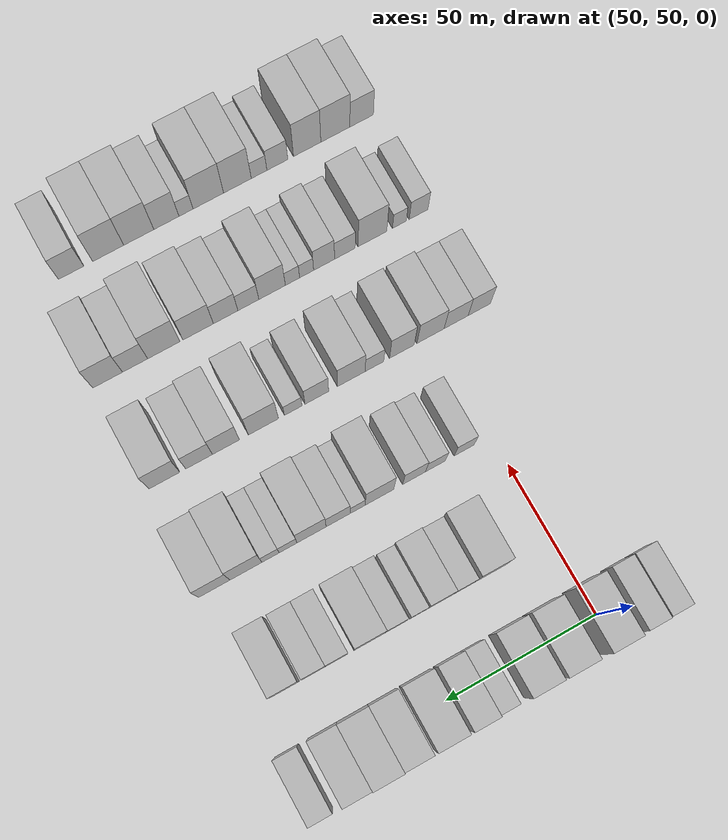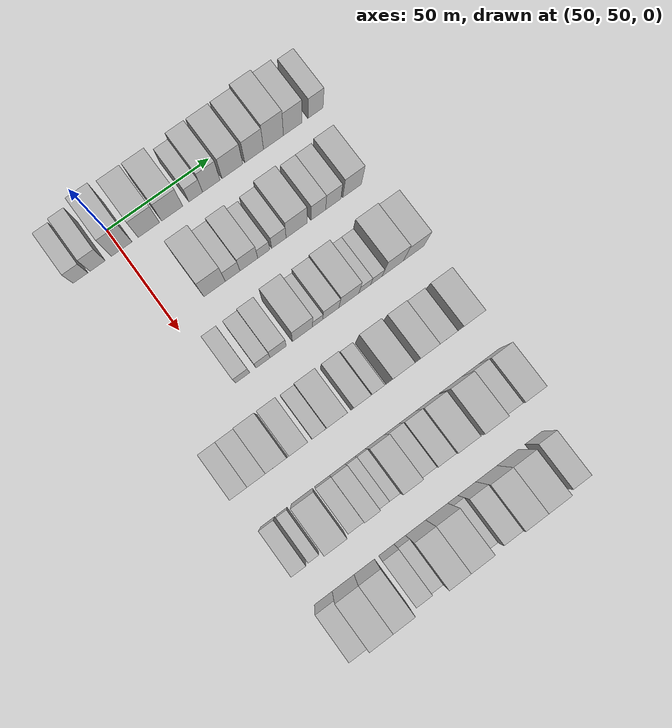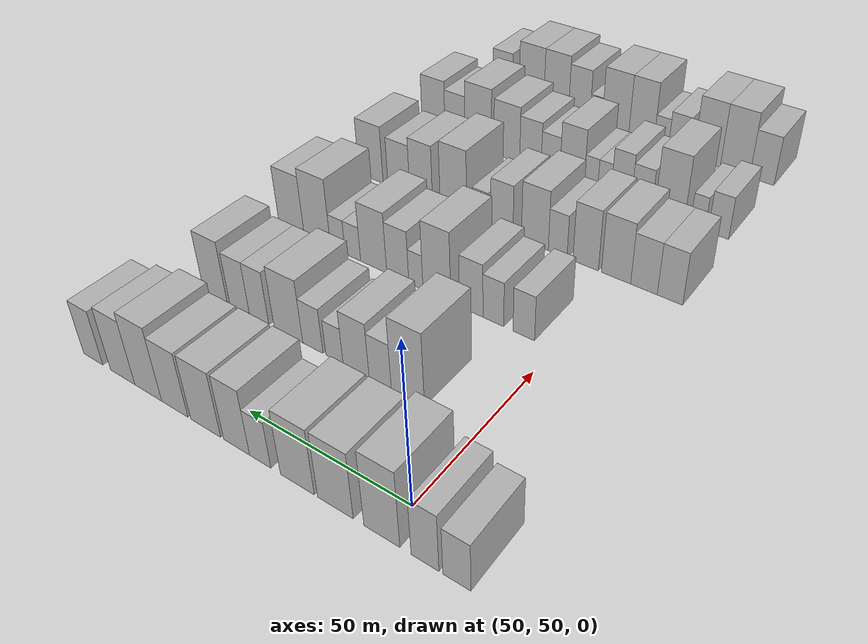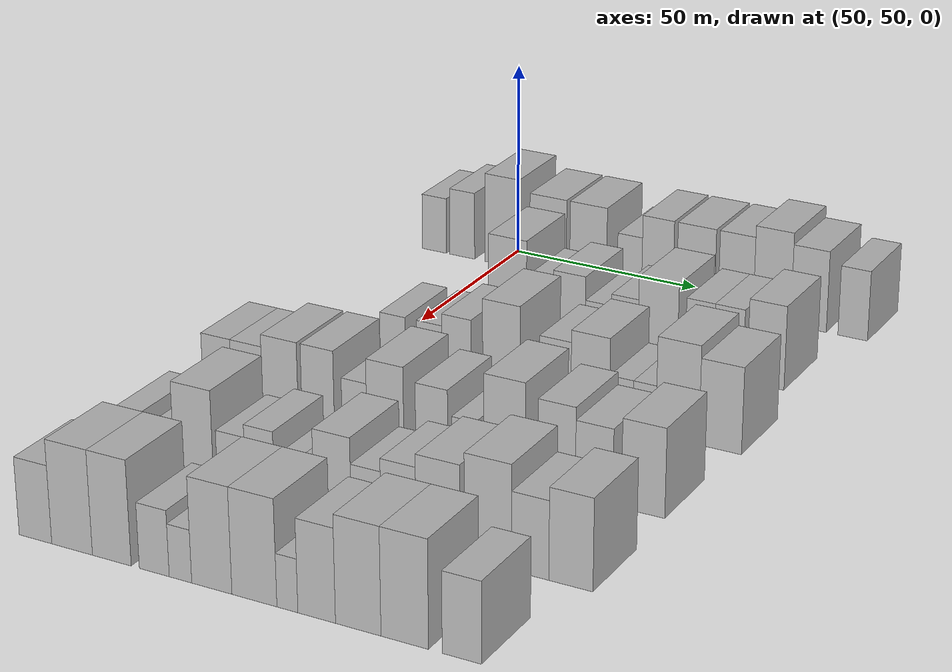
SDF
<sdf version="1.6">
 <world name="default">
  <model name="building_67">
   <static>1</static>
   <pose>50.0000 30.8138 0 0.000000 0.000000 0.000000</pose>
   <link name="link">
    <pose>0 0 7.50 0 0 0</pose>
    <collision name="collision"><geometry><box><size>20.0000 7.0881 15.0000</size></box></geometry></collision>
    <visual name="visual">
     <cast_shadows>0</cast_shadows>
     <geometry><box><size>20.0000 7.0881 15.0000</size></box></geometry>
     <material>
      <script>
       <uri>model://HANNAS_wall/materials/scripts</uri>
       <uri>model://HANNAS_wall/materials/textures</uri>
       <name>vrc/HANNAS_wall</name>
      </script>
     </material>
    </visual>
   </link>
  </model>
  <model name="building_68">
   <static>1</static>
   <pose>50.0000 38.9960 0 0.000000 0.000000 0.000000</pose>
   <link name="link">
    <pose>0 0 9.00 0 0 0</pose>
    <collision name="collision"><geometry><box><size>20.0000 7.2763 18.0000</size></box></geometry></collision>
    <visual name="visual">
     <cast_shadows>0</cast_shadows>
     <geometry><box><size>20.0000 7.2763 18.0000</size></box></geometry>
     <material>
      <script>
       <uri>model://HANNAS_wall/materials/scripts</uri>
       <uri>model://HANNAS_wall/materials/textures</uri>
       <name>vrc/HANNAS_wall</name>
      </script>
     </material>
    </visual>
   </link>
  </model>
  <model name="building_69">
   <static>1</static>
   <pose>50.0000 50.5784 0 0.000000 0.000000 0.000000</pose>
   <link name="link">
    <pose>0 0 12.00 0 0 0</pose>
    <collision name="collision"><geometry><box><size>20.0000 9.8885 24.0000</size></box></geometry></collision>
    <visual name="visual">
     <cast_shadows>0</cast_shadows>
     <geometry><box><size>20.0000 9.8885 24.0000</size></box></geometry>
     <material>
      <script>
       <uri>model://HANNAS_wall/materials/scripts</uri>
       <uri>model://HANNAS_wall/materials/textures</uri>
       <name>vrc/HANNAS_wall</name>
      </script>
     </material>
    </visual>
   </link>
  </model>
  <model name="building_70">
   <static>1</static>
   <pose>50.0000 63.6983 0 0.000000 0.000000 0.000000</pose>
   <link name="link">
    <pose>0 0 10.50 0 0 0</pose>
    <collision name="collision"><geometry><box><size>20.0000 10.3514 21.0000</size></box></geometry></collision>
    <visual name="visual">
     <cast_shadows>0</cast_shadows>
     <geometry><box><size>20.0000 10.3514 21.0000</size></box></geometry>
     <material>
      <script>
       <uri>model://HANNAS_wall/materials/scripts</uri>
       <uri>model://HANNAS_wall/materials/textures</uri>
       <name>vrc/HANNAS_wall</name>
      </script>
     </material>
    </visual>
   </link>
  </model>
  <model name="building_71">
   <static>1</static>
   <pose>50.0000 75.0216 0 0.000000 0.000000 0.000000</pose>
   <link name="link">
    <pose>0 0 10.50 0 0 0</pose>
    <collision name="collision"><geometry><box><size>20.0000 10.2951 21.0000</size></box></geometry></collision>
    <visual name="visual">
     <cast_shadows>0</cast_shadows>
     <geometry><box><size>20.0000 10.2951 21.0000</size></box></geometry>
     <material>
      <script>
       <uri>model://HANNAS_wall/materials/scripts</uri>
       <uri>model://HANNAS_wall/materials/textures</uri>
       <name>vrc/HANNAS_wall</name>
      </script>
     </material>
    </visual>
   </link>
  </model>
  <model name="building_72">
   <static>1</static>
   <pose>50.0000 86.5434 0 0.000000 0.000000 0.000000</pose>
   <link name="link">
    <pose>0 0 7.50 0 0 0</pose>
    <collision name="collision"><geometry><box><size>20.0000 6.7485 15.0000</size></box></geometry></collision>
    <visual name="visual">
     <cast_shadows>0</cast_shadows>
     <geometry><box><size>20.0000 6.7485 15.0000</size></box></geometry>
     <material>
      <script>
       <uri>model://HANNAS_wall/materials/scripts</uri>
       <uri>model://HANNAS_wall/materials/textures</uri>
       <name>vrc/HANNAS_wall</name>
      </script>
     </material>
    </visual>
   </link>
  </model>
  <model name="building_73">
   <static>1</static>
   <pose>50.0000 94.1869 0 0.000000 0.000000 0.000000</pose>
   <link name="link">
    <pose>0 0 10.50 0 0 0</pose>
    <collision name="collision"><geometry><box><size>20.0000 8.5384 21.0000</size></box></geometry></collision>
    <visual name="visual">
     <cast_shadows>0</cast_shadows>
     <geometry><box><size>20.0000 8.5384 21.0000</size></box></geometry>
     <material>
      <script>
       <uri>model://HANNAS_wall/materials/scripts</uri>
       <uri>model://HANNAS_wall/materials/textures</uri>
       <name>vrc/HANNAS_wall</name>
      </script>
     </material>
    </visual>
   </link>
  </model>
  <model name="building_74">
   <static>1</static>
   <pose>50.0000 104.5766 0 0.000000 0.000000 0.000000</pose>
   <link name="link">
    <pose>0 0 10.50 0 0 0</pose>
    <collision name="collision"><geometry><box><size>20.0000 10.2410 21.0000</size></box></geometry></collision>
    <visual name="visual">
     <cast_shadows>0</cast_shadows>
     <geometry><box><size>20.0000 10.2410 21.0000</size></box></geometry>
     <material>
      <script>
       <uri>model://HANNAS_wall/materials/scripts</uri>
       <uri>model://HANNAS_wall/materials/textures</uri>
       <name>vrc/HANNAS_wall</name>
      </script>
     </material>
    </visual>
   </link>
  </model>
  <model name="building_75">
   <static>1</static>
   <pose>50.0000 115.3670 0 0.000000 0.000000 0.000000</pose>
   <link name="link">
    <pose>0 0 10.50 0 0 0</pose>
    <collision name="collision"><geometry><box><size>20.0000 9.3397 21.0000</size></box></geometry></collision>
    <visual name="visual">
     <cast_shadows>0</cast_shadows>
     <geometry><box><size>20.0000 9.3397 21.0000</size></box></geometry>
     <material>
      <script>
       <uri>model://HANNAS_wall/materials/scripts</uri>
       <uri>model://HANNAS_wall/materials/textures</uri>
       <name>vrc/HANNAS_wall</name>
      </script>
     </material>
    </visual>
   </link>
  </model>
  <model name="building_76">
   <static>1</static>
   <pose>50.0000 124.9895 0 0.000000 0.000000 0.000000</pose>
   <link name="link">
    <pose>0 0 12.00 0 0 0</pose>
    <collision name="collision"><geometry><box><size>20.0000 9.9055 24.0000</size></box></geometry></collision>
    <visual name="visual">
     <cast_shadows>0</cast_shadows>
     <geometry><box><size>20.0000 9.9055 24.0000</size></box></geometry>
     <material>
      <script>
       <uri>model://HANNAS_wall/materials/scripts</uri>
       <uri>model://HANNAS_wall/materials/textures</uri>
       <name>vrc/HANNAS_wall</name>
      </script>
     </material>
    </visual>
   </link>
  </model>
  <model name="building_77">
   <static>1</static>
   <pose>50.0000 134.5950 0 0.000000 0.000000 0.000000</pose>
   <link name="link">
    <pose>0 0 10.50 0 0 0</pose>
    <collision name="collision"><geometry><box><size>20.0000 9.3054 21.0000</size></box></geometry></collision>
    <visual name="visual">
     <cast_shadows>0</cast_shadows>
     <geometry><box><size>20.0000 9.3054 21.0000</size></box></geometry>
     <material>
      <script>
       <uri>model://HANNAS_wall/materials/scripts</uri>
       <uri>model://HANNAS_wall/materials/textures</uri>
       <name>vrc/HANNAS_wall</name>
      </script>
     </material>
    </visual>
   </link>
  </model>
  <model name="building_78">
   <static>1</static>
   <pose>50.0000 146.0429 0 0.000000 0.000000 0.000000</pose>
   <link name="link">
    <pose>0 0 9.00 0 0 0</pose>
    <collision name="collision"><geometry><box><size>20.0000 7.5906 18.0000</size></box></geometry></collision>
    <visual name="visual">
     <cast_shadows>0</cast_shadows>
     <geometry><box><size>20.0000 7.5906 18.0000</size></box></geometry>
     <material>
      <script>
       <uri>model://HANNAS_wall/materials/scripts</uri>
       <uri>model://HANNAS_wall/materials/textures</uri>
       <name>vrc/HANNAS_wall</name>
      </script>
     </material>
    </visual>
   </link>
  </model>
  <model name="building_200">
   <static>1</static>
   <pose>85.0000 70.8505 0 0.000000 0.000000 0.000000</pose>
   <link name="link">
    <pose>0 0 12.00 0 0 0</pose>
    <collision name="collision"><geometry><box><size>20.0000 10.3451 24.0000</size></box></geometry></collision>
    <visual name="visual">
     <cast_shadows>0</cast_shadows>
     <geometry><box><size>20.0000 10.3451 24.0000</size></box></geometry>
     <material>
      <script>
       <uri>model://HANNAS_wall/materials/scripts</uri>
       <uri>model://HANNAS_wall/materials/textures</uri>
       <name>vrc/HANNAS_wall</name>
      </script>
     </material>
    </visual>
   </link>
  </model>
  <model name="building_201">
   <static>1</static>
   <pose>85.0000 79.6024 0 0.000000 0.000000 0.000000</pose>
   <link name="link">
    <pose>0 0 7.50 0 0 0</pose>
    <collision name="collision"><geometry><box><size>20.0000 7.1587 15.0000</size></box></geometry></collision>
    <visual name="visual">
     <cast_shadows>0</cast_shadows>
     <geometry><box><size>20.0000 7.1587 15.0000</size></box></geometry>
     <material>
      <script>
       <uri>model://HANNAS_wall/materials/scripts</uri>
       <uri>model://HANNAS_wall/materials/textures</uri>
       <name>vrc/HANNAS_wall</name>
      </script>
     </material>
    </visual>
   </link>
  </model>
  <model name="building_202">
   <static>1</static>
   <pose>85.0000 87.4994 0 0.000000 0.000000 0.000000</pose>
   <link name="link">
    <pose>0 0 9.00 0 0 0</pose>
    <collision name="collision"><geometry><box><size>20.0000 8.6353 18.0000</size></box></geometry></collision>
    <visual name="visual">
     <cast_shadows>0</cast_shadows>
     <geometry><box><size>20.0000 8.6353 18.0000</size></box></geometry>
     <material>
      <script>
       <uri>model://HANNAS_wall/materials/scripts</uri>
       <uri>model://HANNAS_wall/materials/textures</uri>
       <name>vrc/HANNAS_wall</name>
      </script>
     </material>
    </visual>
   </link>
  </model>
  <model name="building_203">
   <static>1</static>
   <pose>85.0000 94.7326 0 0.000000 0.000000 0.000000</pose>
   <link name="link">
    <pose>0 0 6.00 0 0 0</pose>
    <collision name="collision"><geometry><box><size>20.0000 5.8311 12.0000</size></box></geometry></collision>
    <visual name="visual">
     <cast_shadows>0</cast_shadows>
     <geometry><box><size>20.0000 5.8311 12.0000</size></box></geometry>
     <material>
      <script>
       <uri>model://HANNAS_wall/materials/scripts</uri>
       <uri>model://HANNAS_wall/materials/textures</uri>
       <name>vrc/HANNAS_wall</name>
      </script>
     </material>
    </visual>
   </link>
  </model>
  <model name="building_204">
   <static>1</static>
   <pose>85.0000 102.1776 0 0.000000 0.000000 0.000000</pose>
   <link name="link">
    <pose>0 0 7.50 0 0 0</pose>
    <collision name="collision"><geometry><box><size>20.0000 7.0588 15.0000</size></box></geometry></collision>
    <visual name="visual">
     <cast_shadows>0</cast_shadows>
     <geometry><box><size>20.0000 7.0588 15.0000</size></box></geometry>
     <material>
      <script>
       <uri>model://HANNAS_wall/materials/scripts</uri>
       <uri>model://HANNAS_wall/materials/textures</uri>
       <name>vrc/HANNAS_wall</name>
      </script>
     </material>
    </visual>
   </link>
  </model>
  <model name="building_205">
   <static>1</static>
   <pose>85.0000 110.8464 0 0.000000 0.000000 0.000000</pose>
   <link name="link">
    <pose>0 0 10.50 0 0 0</pose>
    <collision name="collision"><geometry><box><size>20.0000 10.2790 21.0000</size></box></geometry></collision>
    <visual name="visual">
     <cast_shadows>0</cast_shadows>
     <geometry><box><size>20.0000 10.2790 21.0000</size></box></geometry>
     <material>
      <script>
       <uri>model://HANNAS_wall/materials/scripts</uri>
       <uri>model://HANNAS_wall/materials/textures</uri>
       <name>vrc/HANNAS_wall</name>
      </script>
     </material>
    </visual>
   </link>
  </model>
  <model name="building_206">
   <static>1</static>
   <pose>85.0000 121.5926 0 0.000000 0.000000 0.000000</pose>
   <link name="link">
    <pose>0 0 9.00 0 0 0</pose>
    <collision name="collision"><geometry><box><size>20.0000 7.2134 18.0000</size></box></geometry></collision>
    <visual name="visual">
     <cast_shadows>0</cast_shadows>
     <geometry><box><size>20.0000 7.2134 18.0000</size></box></geometry>
     <material>
      <script>
       <uri>model://HANNAS_wall/materials/scripts</uri>
       <uri>model://HANNAS_wall/materials/textures</uri>
       <name>vrc/HANNAS_wall</name>
      </script>
     </material>
    </visual>
   </link>
  </model>
  <model name="building_207">
   <static>1</static>
   <pose>85.0000 128.9765 0 0.000000 0.000000 0.000000</pose>
   <link name="link">
    <pose>0 0 9.00 0 0 0</pose>
    <collision name="collision"><geometry><box><size>20.0000 7.5543 18.0000</size></box></geometry></collision>
    <visual name="visual">
     <cast_shadows>0</cast_shadows>
     <geometry><box><size>20.0000 7.5543 18.0000</size></box></geometry>
     <material>
      <script>
       <uri>model://HANNAS_wall/materials/scripts</uri>
       <uri>model://HANNAS_wall/materials/textures</uri>
       <name>vrc/HANNAS_wall</name>
      </script>
     </material>
    </visual>
   </link>
  </model>
  <model name="building_208">
   <static>1</static>
   <pose>85.0000 138.3964 0 0.000000 0.000000 0.000000</pose>
   <link name="link">
    <pose>0 0 10.50 0 0 0</pose>
    <collision name="collision"><geometry><box><size>20.0000 9.2856 21.0000</size></box></geometry></collision>
    <visual name="visual">
     <cast_shadows>0</cast_shadows>
     <geometry><box><size>20.0000 9.2856 21.0000</size></box></geometry>
     <material>
      <script>
       <uri>model://HANNAS_wall/materials/scripts</uri>
       <uri>model://HANNAS_wall/materials/textures</uri>
       <name>vrc/HANNAS_wall</name>
      </script>
     </material>
    </visual>
   </link>
  </model>
  <model name="building_321">
   <static>1</static>
   <pose>120.0000 59.3525 0 0.000000 0.000000 0.000000</pose>
   <link name="link">
    <pose>0 0 7.50 0 0 0</pose>
    <collision name="collision"><geometry><box><size>20.0000 6.7485 15.0000</size></box></geometry></collision>
    <visual name="visual">
     <cast_shadows>0</cast_shadows>
     <geometry><box><size>20.0000 6.7485 15.0000</size></box></geometry>
     <material>
      <script>
       <uri>model://HANNAS_wall/materials/scripts</uri>
       <uri>model://HANNAS_wall/materials/textures</uri>
       <name>vrc/HANNAS_wall</name>
      </script>
     </material>
    </visual>
   </link>
  </model>
  <model name="building_322">
   <static>1</static>
   <pose>120.0000 69.0872 0 0.000000 0.000000 0.000000</pose>
   <link name="link">
    <pose>0 0 7.50 0 0 0</pose>
    <collision name="collision"><geometry><box><size>20.0000 6.7209 15.0000</size></box></geometry></collision>
    <visual name="visual">
     <cast_shadows>0</cast_shadows>
     <geometry><box><size>20.0000 6.7209 15.0000</size></box></geometry>
     <material>
      <script>
       <uri>model://HANNAS_wall/materials/scripts</uri>
       <uri>model://HANNAS_wall/materials/textures</uri>
       <name>vrc/HANNAS_wall</name>
      </script>
     </material>
    </visual>
   </link>
  </model>
  <model name="building_323">
   <static>1</static>
   <pose>120.0000 76.3138 0 0.000000 0.000000 0.000000</pose>
   <link name="link">
    <pose>0 0 9.00 0 0 0</pose>
    <collision name="collision"><geometry><box><size>20.0000 7.7325 18.0000</size></box></geometry></collision>
    <visual name="visual">
     <cast_shadows>0</cast_shadows>
     <geometry><box><size>20.0000 7.7325 18.0000</size></box></geometry>
     <material>
      <script>
       <uri>model://HANNAS_wall/materials/scripts</uri>
       <uri>model://HANNAS_wall/materials/textures</uri>
       <name>vrc/HANNAS_wall</name>
      </script>
     </material>
    </visual>
   </link>
  </model>
  <model name="building_324">
   <static>1</static>
   <pose>120.0000 87.9916 0 0.000000 0.000000 0.000000</pose>
   <link name="link">
    <pose>0 0 12.00 0 0 0</pose>
    <collision name="collision"><geometry><box><size>20.0000 9.6231 24.0000</size></box></geometry></collision>
    <visual name="visual">
     <cast_shadows>0</cast_shadows>
     <geometry><box><size>20.0000 9.6231 24.0000</size></box></geometry>
     <material>
      <script>
       <uri>model://HANNAS_wall/materials/scripts</uri>
       <uri>model://HANNAS_wall/materials/textures</uri>
       <name>vrc/HANNAS_wall</name>
      </script>
     </material>
    </visual>
   </link>
  </model>
  <model name="building_325">
   <static>1</static>
   <pose>120.0000 95.3047 0 0.000000 0.000000 0.000000</pose>
   <link name="link">
    <pose>0 0 6.00 0 0 0</pose>
    <collision name="collision"><geometry><box><size>20.0000 5.0031 12.0000</size></box></geometry></collision>
    <visual name="visual">
     <cast_shadows>0</cast_shadows>
     <geometry><box><size>20.0000 5.0031 12.0000</size></box></geometry>
     <material>
      <script>
       <uri>model://HANNAS_wall/materials/scripts</uri>
       <uri>model://HANNAS_wall/materials/textures</uri>
       <name>vrc/HANNAS_wall</name>
      </script>
     </material>
    </visual>
   </link>
  </model>
  <model name="building_326">
   <static>1</static>
   <pose>120.0000 101.7952 0 0.000000 0.000000 0.000000</pose>
   <link name="link">
    <pose>0 0 9.00 0 0 0</pose>
    <collision name="collision"><geometry><box><size>20.0000 7.9778 18.0000</size></box></geometry></collision>
    <visual name="visual">
     <cast_shadows>0</cast_shadows>
     <geometry><box><size>20.0000 7.9778 18.0000</size></box></geometry>
     <material>
      <script>
       <uri>model://HANNAS_wall/materials/scripts</uri>
       <uri>model://HANNAS_wall/materials/textures</uri>
       <name>vrc/HANNAS_wall</name>
      </script>
     </material>
    </visual>
   </link>
  </model>
  <model name="building_327">
   <static>1</static>
   <pose>120.0000 110.6309 0 0.000000 0.000000 0.000000</pose>
   <link name="link">
    <pose>0 0 10.50 0 0 0</pose>
    <collision name="collision"><geometry><box><size>20.0000 9.6937 21.0000</size></box></geometry></collision>
    <visual name="visual">
     <cast_shadows>0</cast_shadows>
     <geometry><box><size>20.0000 9.6937 21.0000</size></box></geometry>
     <material>
      <script>
       <uri>model://HANNAS_wall/materials/scripts</uri>
       <uri>model://HANNAS_wall/materials/textures</uri>
       <name>vrc/HANNAS_wall</name>
      </script>
     </material>
    </visual>
   </link>
  </model>
  <model name="building_328">
   <static>1</static>
   <pose>120.0000 118.4212 0 0.000000 0.000000 0.000000</pose>
   <link name="link">
    <pose>0 0 6.00 0 0 0</pose>
    <collision name="collision"><geometry><box><size>20.0000 5.8869 12.0000</size></box></geometry></collision>
    <visual name="visual">
     <cast_shadows>0</cast_shadows>
     <geometry><box><size>20.0000 5.8869 12.0000</size></box></geometry>
     <material>
      <script>
       <uri>model://HANNAS_wall/materials/scripts</uri>
       <uri>model://HANNAS_wall/materials/textures</uri>
       <name>vrc/HANNAS_wall</name>
      </script>
     </material>
    </visual>
   </link>
  </model>
  <model name="building_329">
   <static>1</static>
   <pose>120.0000 124.1865 0 0.000000 0.000000 0.000000</pose>
   <link name="link">
    <pose>0 0 6.00 0 0 0</pose>
    <collision name="collision"><geometry><box><size>20.0000 5.6437 12.0000</size></box></geometry></collision>
    <visual name="visual">
     <cast_shadows>0</cast_shadows>
     <geometry><box><size>20.0000 5.6437 12.0000</size></box></geometry>
     <material>
      <script>
       <uri>model://HANNAS_wall/materials/scripts</uri>
       <uri>model://HANNAS_wall/materials/textures</uri>
       <name>vrc/HANNAS_wall</name>
      </script>
     </material>
    </visual>
   </link>
  </model>
  <model name="building_330">
   <static>1</static>
   <pose>120.0000 132.2730 0 0.000000 0.000000 0.000000</pose>
   <link name="link">
    <pose>0 0 12.00 0 0 0</pose>
    <collision name="collision"><geometry><box><size>20.0000 10.5293 24.0000</size></box></geometry></collision>
    <visual name="visual">
     <cast_shadows>0</cast_shadows>
     <geometry><box><size>20.0000 10.5293 24.0000</size></box></geometry>
     <material>
      <script>
       <uri>model://HANNAS_wall/materials/scripts</uri>
       <uri>model://HANNAS_wall/materials/textures</uri>
       <name>vrc/HANNAS_wall</name>
      </script>
     </material>
    </visual>
   </link>
  </model>
  <model name="building_331">
   <static>1</static>
   <pose>120.0000 142.6716 0 0.000000 0.000000 0.000000</pose>
   <link name="link">
    <pose>0 0 10.50 0 0 0</pose>
    <collision name="collision"><geometry><box><size>20.0000 10.2680 21.0000</size></box></geometry></collision>
    <visual name="visual">
     <cast_shadows>0</cast_shadows>
     <geometry><box><size>20.0000 10.2680 21.0000</size></box></geometry>
     <material>
      <script>
       <uri>model://HANNAS_wall/materials/scripts</uri>
       <uri>model://HANNAS_wall/materials/textures</uri>
       <name>vrc/HANNAS_wall</name>
      </script>
     </material>
    </visual>
   </link>
  </model>
  <model name="building_449">
   <static>1</static>
   <pose>155.0000 33.8526 0 0.000000 0.000000 0.000000</pose>
   <link name="link">
    <pose>0 0 9.00 0 0 0</pose>
    <collision name="collision"><geometry><box><size>20.0000 7.7502 18.0000</size></box></geometry></collision>
    <visual name="visual">
     <cast_shadows>0</cast_shadows>
     <geometry><box><size>20.0000 7.7502 18.0000</size></box></geometry>
     <material>
      <script>
       <uri>model://HANNAS_wall/materials/scripts</uri>
       <uri>model://HANNAS_wall/materials/textures</uri>
       <name>vrc/HANNAS_wall</name>
      </script>
     </material>
    </visual>
   </link>
  </model>
  <model name="building_450">
   <static>1</static>
   <pose>155.0000 41.8777 0 0.000000 0.000000 0.000000</pose>
   <link name="link">
    <pose>0 0 9.00 0 0 0</pose>
    <collision name="collision"><geometry><box><size>20.0000 8.3001 18.0000</size></box></geometry></collision>
    <visual name="visual">
     <cast_shadows>0</cast_shadows>
     <geometry><box><size>20.0000 8.3001 18.0000</size></box></geometry>
     <material>
      <script>
       <uri>model://HANNAS_wall/materials/scripts</uri>
       <uri>model://HANNAS_wall/materials/textures</uri>
       <name>vrc/HANNAS_wall</name>
      </script>
     </material>
    </visual>
   </link>
  </model>
  <model name="building_451">
   <static>1</static>
   <pose>155.0000 50.7173 0 0.000000 0.000000 0.000000</pose>
   <link name="link">
    <pose>0 0 10.50 0 0 0</pose>
    <collision name="collision"><geometry><box><size>20.0000 9.3790 21.0000</size></box></geometry></collision>
    <visual name="visual">
     <cast_shadows>0</cast_shadows>
     <geometry><box><size>20.0000 9.3790 21.0000</size></box></geometry>
     <material>
      <script>
       <uri>model://HANNAS_wall/materials/scripts</uri>
       <uri>model://HANNAS_wall/materials/textures</uri>
       <name>vrc/HANNAS_wall</name>
      </script>
     </material>
    </visual>
   </link>
  </model>
  <model name="building_452">
   <static>1</static>
   <pose>155.0000 60.6191 0 0.000000 0.000000 0.000000</pose>
   <link name="link">
    <pose>0 0 10.50 0 0 0</pose>
    <collision name="collision"><geometry><box><size>20.0000 8.4245 21.0000</size></box></geometry></collision>
    <visual name="visual">
     <cast_shadows>0</cast_shadows>
     <geometry><box><size>20.0000 8.4245 21.0000</size></box></geometry>
     <material>
      <script>
       <uri>model://HANNAS_wall/materials/scripts</uri>
       <uri>model://HANNAS_wall/materials/textures</uri>
       <name>vrc/HANNAS_wall</name>
      </script>
     </material>
    </visual>
   </link>
  </model>
  <model name="building_453">
   <static>1</static>
   <pose>155.0000 70.0193 0 0.000000 0.000000 0.000000</pose>
   <link name="link">
    <pose>0 0 7.50 0 0 0</pose>
    <collision name="collision"><geometry><box><size>20.0000 6.3759 15.0000</size></box></geometry></collision>
    <visual name="visual">
     <cast_shadows>0</cast_shadows>
     <geometry><box><size>20.0000 6.3759 15.0000</size></box></geometry>
     <material>
      <script>
       <uri>model://HANNAS_wall/materials/scripts</uri>
       <uri>model://HANNAS_wall/materials/textures</uri>
       <name>vrc/HANNAS_wall</name>
      </script>
     </material>
    </visual>
   </link>
  </model>
  <model name="building_454">
   <static>1</static>
   <pose>155.0000 77.9081 0 0.000000 0.000000 0.000000</pose>
   <link name="link">
    <pose>0 0 10.50 0 0 0</pose>
    <collision name="collision"><geometry><box><size>20.0000 9.4017 21.0000</size></box></geometry></collision>
    <visual name="visual">
     <cast_shadows>0</cast_shadows>
     <geometry><box><size>20.0000 9.4017 21.0000</size></box></geometry>
     <material>
      <script>
       <uri>model://HANNAS_wall/materials/scripts</uri>
       <uri>model://HANNAS_wall/materials/textures</uri>
       <name>vrc/HANNAS_wall</name>
      </script>
     </material>
    </visual>
   </link>
  </model>
  <model name="building_455">
   <static>1</static>
   <pose>155.0000 89.6162 0 0.000000 0.000000 0.000000</pose>
   <link name="link">
    <pose>0 0 9.00 0 0 0</pose>
    <collision name="collision"><geometry><box><size>20.0000 8.0144 18.0000</size></box></geometry></collision>
    <visual name="visual">
     <cast_shadows>0</cast_shadows>
     <geometry><box><size>20.0000 8.0144 18.0000</size></box></geometry>
     <material>
      <script>
       <uri>model://HANNAS_wall/materials/scripts</uri>
       <uri>model://HANNAS_wall/materials/textures</uri>
       <name>vrc/HANNAS_wall</name>
      </script>
     </material>
    </visual>
   </link>
  </model>
  <model name="building_456">
   <static>1</static>
   <pose>155.0000 97.5871 0 0.000000 0.000000 0.000000</pose>
   <link name="link">
    <pose>0 0 6.00 0 0 0</pose>
    <collision name="collision"><geometry><box><size>20.0000 5.9275 12.0000</size></box></geometry></collision>
    <visual name="visual">
     <cast_shadows>0</cast_shadows>
     <geometry><box><size>20.0000 5.9275 12.0000</size></box></geometry>
     <material>
      <script>
       <uri>model://HANNAS_wall/materials/scripts</uri>
       <uri>model://HANNAS_wall/materials/textures</uri>
       <name>vrc/HANNAS_wall</name>
      </script>
     </material>
    </visual>
   </link>
  </model>
  <model name="building_457">
   <static>1</static>
   <pose>155.0000 107.6178 0 0.000000 0.000000 0.000000</pose>
   <link name="link">
    <pose>0 0 12.00 0 0 0</pose>
    <collision name="collision"><geometry><box><size>20.0000 10.1339 24.0000</size></box></geometry></collision>
    <visual name="visual">
     <cast_shadows>0</cast_shadows>
     <geometry><box><size>20.0000 10.1339 24.0000</size></box></geometry>
     <material>
      <script>
       <uri>model://HANNAS_wall/materials/scripts</uri>
       <uri>model://HANNAS_wall/materials/textures</uri>
       <name>vrc/HANNAS_wall</name>
      </script>
     </material>
    </visual>
   </link>
  </model>
  <model name="building_458">
   <static>1</static>
   <pose>155.0000 120.1816 0 0.000000 0.000000 0.000000</pose>
   <link name="link">
    <pose>0 0 10.50 0 0 0</pose>
    <collision name="collision"><geometry><box><size>20.0000 8.9937 21.0000</size></box></geometry></collision>
    <visual name="visual">
     <cast_shadows>0</cast_shadows>
     <geometry><box><size>20.0000 8.9937 21.0000</size></box></geometry>
     <material>
      <script>
       <uri>model://HANNAS_wall/materials/scripts</uri>
       <uri>model://HANNAS_wall/materials/textures</uri>
       <name>vrc/HANNAS_wall</name>
      </script>
     </material>
    </visual>
   </link>
  </model>
  <model name="building_459">
   <static>1</static>
   <pose>155.0000 129.1196 0 0.000000 0.000000 0.000000</pose>
   <link name="link">
    <pose>0 0 9.00 0 0 0</pose>
    <collision name="collision"><geometry><box><size>20.0000 8.8823 18.0000</size></box></geometry></collision>
    <visual name="visual">
     <cast_shadows>0</cast_shadows>
     <geometry><box><size>20.0000 8.8823 18.0000</size></box></geometry>
     <material>
      <script>
       <uri>model://HANNAS_wall/materials/scripts</uri>
       <uri>model://HANNAS_wall/materials/textures</uri>
       <name>vrc/HANNAS_wall</name>
      </script>
     </material>
    </visual>
   </link>
  </model>
  <model name="building_460">
   <static>1</static>
   <pose>155.0000 140.6371 0 0.000000 0.000000 0.000000</pose>
   <link name="link">
    <pose>0 0 10.50 0 0 0</pose>
    <collision name="collision"><geometry><box><size>20.0000 10.1528 21.0000</size></box></geometry></collision>
    <visual name="visual">
     <cast_shadows>0</cast_shadows>
     <geometry><box><size>20.0000 10.1528 21.0000</size></box></geometry>
     <material>
      <script>
       <uri>model://HANNAS_wall/materials/scripts</uri>
       <uri>model://HANNAS_wall/materials/textures</uri>
       <name>vrc/HANNAS_wall</name>
      </script>
     </material>
    </visual>
   </link>
  </model>
  <model name="building_582">
   <static>1</static>
   <pose>190.0000 34.9261 0 0.000000 0.000000 0.000000</pose>
   <link name="link">
    <pose>0 0 7.50 0 0 0</pose>
    <collision name="collision"><geometry><box><size>20.0000 6.5883 15.0000</size></box></geometry></collision>
    <visual name="visual">
     <cast_shadows>0</cast_shadows>
     <geometry><box><size>20.0000 6.5883 15.0000</size></box></geometry>
     <material>
      <script>
       <uri>model://HANNAS_wall/materials/scripts</uri>
       <uri>model://HANNAS_wall/materials/textures</uri>
       <name>vrc/HANNAS_wall</name>
      </script>
     </material>
    </visual>
   </link>
  </model>
  <model name="building_583">
   <static>1</static>
   <pose>190.0000 41.6383 0 0.000000 0.000000 0.000000</pose>
   <link name="link">
    <pose>0 0 6.00 0 0 0</pose>
    <collision name="collision"><geometry><box><size>20.0000 4.8362 12.0000</size></box></geometry></collision>
    <visual name="visual">
     <cast_shadows>0</cast_shadows>
     <geometry><box><size>20.0000 4.8362 12.0000</size></box></geometry>
     <material>
      <script>
       <uri>model://HANNAS_wall/materials/scripts</uri>
       <uri>model://HANNAS_wall/materials/textures</uri>
       <name>vrc/HANNAS_wall</name>
      </script>
     </material>
    </visual>
   </link>
  </model>
  <model name="building_584">
   <static>1</static>
   <pose>190.0000 51.0670 0 0.000000 0.000000 0.000000</pose>
   <link name="link">
    <pose>0 0 12.00 0 0 0</pose>
    <collision name="collision"><geometry><box><size>20.0000 10.0211 24.0000</size></box></geometry></collision>
    <visual name="visual">
     <cast_shadows>0</cast_shadows>
     <geometry><box><size>20.0000 10.0211 24.0000</size></box></geometry>
     <material>
      <script>
       <uri>model://HANNAS_wall/materials/scripts</uri>
       <uri>model://HANNAS_wall/materials/textures</uri>
       <name>vrc/HANNAS_wall</name>
      </script>
     </material>
    </visual>
   </link>
  </model>
  <model name="building_585">
   <static>1</static>
   <pose>190.0000 60.6470 0 0.000000 0.000000 0.000000</pose>
   <link name="link">
    <pose>0 0 7.50 0 0 0</pose>
    <collision name="collision"><geometry><box><size>20.0000 7.1390 15.0000</size></box></geometry></collision>
    <visual name="visual">
     <cast_shadows>0</cast_shadows>
     <geometry><box><size>20.0000 7.1390 15.0000</size></box></geometry>
     <material>
      <script>
       <uri>model://HANNAS_wall/materials/scripts</uri>
       <uri>model://HANNAS_wall/materials/textures</uri>
       <name>vrc/HANNAS_wall</name>
      </script>
     </material>
    </visual>
   </link>
  </model>
  <model name="building_586">
   <static>1</static>
   <pose>190.0000 67.8376 0 0.000000 0.000000 0.000000</pose>
   <link name="link">
    <pose>0 0 9.00 0 0 0</pose>
    <collision name="collision"><geometry><box><size>20.0000 7.2422 18.0000</size></box></geometry></collision>
    <visual name="visual">
     <cast_shadows>0</cast_shadows>
     <geometry><box><size>20.0000 7.2422 18.0000</size></box></geometry>
     <material>
      <script>
       <uri>model://HANNAS_wall/materials/scripts</uri>
       <uri>model://HANNAS_wall/materials/textures</uri>
       <name>vrc/HANNAS_wall</name>
      </script>
     </material>
    </visual>
   </link>
  </model>
  <model name="building_587">
   <static>1</static>
   <pose>190.0000 73.8658 0 0.000000 0.000000 0.000000</pose>
   <link name="link">
    <pose>0 0 6.00 0 0 0</pose>
    <collision name="collision"><geometry><box><size>20.0000 4.8141 12.0000</size></box></geometry></collision>
    <visual name="visual">
     <cast_shadows>0</cast_shadows>
     <geometry><box><size>20.0000 4.8141 12.0000</size></box></geometry>
     <material>
      <script>
       <uri>model://HANNAS_wall/materials/scripts</uri>
       <uri>model://HANNAS_wall/materials/textures</uri>
       <name>vrc/HANNAS_wall</name>
      </script>
     </material>
    </visual>
   </link>
  </model>
  <model name="building_588">
   <static>1</static>
   <pose>190.0000 78.7311 0 0.000000 0.000000 0.000000</pose>
   <link name="link">
    <pose>0 0 6.00 0 0 0</pose>
    <collision name="collision"><geometry><box><size>20.0000 4.9166 12.0000</size></box></geometry></collision>
    <visual name="visual">
     <cast_shadows>0</cast_shadows>
     <geometry><box><size>20.0000 4.9166 12.0000</size></box></geometry>
     <material>
      <script>
       <uri>model://HANNAS_wall/materials/scripts</uri>
       <uri>model://HANNAS_wall/materials/textures</uri>
       <name>vrc/HANNAS_wall</name>
      </script>
     </material>
    </visual>
   </link>
  </model>
  <model name="building_589">
   <static>1</static>
   <pose>190.0000 85.7325 0 0.000000 0.000000 0.000000</pose>
   <link name="link">
    <pose>0 0 10.50 0 0 0</pose>
    <collision name="collision"><geometry><box><size>20.0000 9.0862 21.0000</size></box></geometry></collision>
    <visual name="visual">
     <cast_shadows>0</cast_shadows>
     <geometry><box><size>20.0000 9.0862 21.0000</size></box></geometry>
     <material>
      <script>
       <uri>model://HANNAS_wall/materials/scripts</uri>
       <uri>model://HANNAS_wall/materials/textures</uri>
       <name>vrc/HANNAS_wall</name>
      </script>
     </material>
    </visual>
   </link>
  </model>
  <model name="building_590">
   <static>1</static>
   <pose>190.0000 93.8554 0 0.000000 0.000000 0.000000</pose>
   <link name="link">
    <pose>0 0 7.50 0 0 0</pose>
    <collision name="collision"><geometry><box><size>20.0000 7.1595 15.0000</size></box></geometry></collision>
    <visual name="visual">
     <cast_shadows>0</cast_shadows>
     <geometry><box><size>20.0000 7.1595 15.0000</size></box></geometry>
     <material>
      <script>
       <uri>model://HANNAS_wall/materials/scripts</uri>
       <uri>model://HANNAS_wall/materials/textures</uri>
       <name>vrc/HANNAS_wall</name>
      </script>
     </material>
    </visual>
   </link>
  </model>
  <model name="building_591">
   <static>1</static>
   <pose>190.0000 101.6077 0 0.000000 0.000000 0.000000</pose>
   <link name="link">
    <pose>0 0 9.00 0 0 0</pose>
    <collision name="collision"><geometry><box><size>20.0000 8.3451 18.0000</size></box></geometry></collision>
    <visual name="visual">
     <cast_shadows>0</cast_shadows>
     <geometry><box><size>20.0000 8.3451 18.0000</size></box></geometry>
     <material>
      <script>
       <uri>model://HANNAS_wall/materials/scripts</uri>
       <uri>model://HANNAS_wall/materials/textures</uri>
       <name>vrc/HANNAS_wall</name>
      </script>
     </material>
    </visual>
   </link>
  </model>
  <model name="building_592">
   <static>1</static>
   <pose>190.0000 110.9553 0 0.000000 0.000000 0.000000</pose>
   <link name="link">
    <pose>0 0 10.50 0 0 0</pose>
    <collision name="collision"><geometry><box><size>20.0000 10.3500 21.0000</size></box></geometry></collision>
    <visual name="visual">
     <cast_shadows>0</cast_shadows>
     <geometry><box><size>20.0000 10.3500 21.0000</size></box></geometry>
     <material>
      <script>
       <uri>model://HANNAS_wall/materials/scripts</uri>
       <uri>model://HANNAS_wall/materials/textures</uri>
       <name>vrc/HANNAS_wall</name>
      </script>
     </material>
    </visual>
   </link>
  </model>
  <model name="building_593">
   <static>1</static>
   <pose>190.0000 122.5695 0 0.000000 0.000000 0.000000</pose>
   <link name="link">
    <pose>0 0 12.00 0 0 0</pose>
    <collision name="collision"><geometry><box><size>20.0000 10.8785 24.0000</size></box></geometry></collision>
    <visual name="visual">
     <cast_shadows>0</cast_shadows>
     <geometry><box><size>20.0000 10.8785 24.0000</size></box></geometry>
     <material>
      <script>
       <uri>model://HANNAS_wall/materials/scripts</uri>
       <uri>model://HANNAS_wall/materials/textures</uri>
       <name>vrc/HANNAS_wall</name>
      </script>
     </material>
    </visual>
   </link>
  </model>
  <model name="building_594">
   <static>1</static>
   <pose>190.0000 132.2441 0 0.000000 0.000000 0.000000</pose>
   <link name="link">
    <pose>0 0 9.00 0 0 0</pose>
    <collision name="collision"><geometry><box><size>20.0000 8.4707 18.0000</size></box></geometry></collision>
    <visual name="visual">
     <cast_shadows>0</cast_shadows>
     <geometry><box><size>20.0000 8.4707 18.0000</size></box></geometry>
     <material>
      <script>
       <uri>model://HANNAS_wall/materials/scripts</uri>
       <uri>model://HANNAS_wall/materials/textures</uri>
       <name>vrc/HANNAS_wall</name>
      </script>
     </material>
    </visual>
   </link>
  </model>
  <model name="building_595">
   <static>1</static>
   <pose>190.0000 141.4341 0 0.000000 0.000000 0.000000</pose>
   <link name="link">
    <pose>0 0 10.50 0 0 0</pose>
    <collision name="collision"><geometry><box><size>20.0000 9.9094 21.0000</size></box></geometry></collision>
    <visual name="visual">
     <cast_shadows>0</cast_shadows>
     <geometry><box><size>20.0000 9.9094 21.0000</size></box></geometry>
     <material>
      <script>
       <uri>model://HANNAS_wall/materials/scripts</uri>
       <uri>model://HANNAS_wall/materials/textures</uri>
       <name>vrc/HANNAS_wall</name>
      </script>
     </material>
    </visual>
   </link>
  </model>
  <model name="building_708">
   <static>1</static>
   <pose>225.0000 35.2601 0 0.000000 0.000000 0.000000</pose>
   <link name="link">
    <pose>0 0 9.00 0 0 0</pose>
    <collision name="collision"><geometry><box><size>20.0000 8.3197 18.0000</size></box></geometry></collision>
    <visual name="visual">
     <cast_shadows>0</cast_shadows>
     <geometry><box><size>20.0000 8.3197 18.0000</size></box></geometry>
     <material>
      <script>
       <uri>model://HANNAS_wall/materials/scripts</uri>
       <uri>model://HANNAS_wall/materials/textures</uri>
       <name>vrc/HANNAS_wall</name>
      </script>
     </material>
    </visual>
   </link>
  </model>
  <model name="building_709">
   <static>1</static>
   <pose>225.0000 44.5431 0 0.000000 0.000000 0.000000</pose>
   <link name="link">
    <pose>0 0 12.00 0 0 0</pose>
    <collision name="collision"><geometry><box><size>20.0000 10.2462 24.0000</size></box></geometry></collision>
    <visual name="visual">
     <cast_shadows>0</cast_shadows>
     <geometry><box><size>20.0000 10.2462 24.0000</size></box></geometry>
     <material>
      <script>
       <uri>model://HANNAS_wall/materials/scripts</uri>
       <uri>model://HANNAS_wall/materials/textures</uri>
       <name>vrc/HANNAS_wall</name>
      </script>
     </material>
    </visual>
   </link>
  </model>
  <model name="building_710">
   <static>1</static>
   <pose>225.0000 54.4747 0 0.000000 0.000000 0.000000</pose>
   <link name="link">
    <pose>0 0 12.00 0 0 0</pose>
    <collision name="collision"><geometry><box><size>20.0000 9.6170 24.0000</size></box></geometry></collision>
    <visual name="visual">
     <cast_shadows>0</cast_shadows>
     <geometry><box><size>20.0000 9.6170 24.0000</size></box></geometry>
     <material>
      <script>
       <uri>model://HANNAS_wall/materials/scripts</uri>
       <uri>model://HANNAS_wall/materials/textures</uri>
       <name>vrc/HANNAS_wall</name>
      </script>
     </material>
    </visual>
   </link>
  </model>
  <model name="building_711">
   <static>1</static>
   <pose>225.0000 64.9317 0 0.000000 0.000000 0.000000</pose>
   <link name="link">
    <pose>0 0 7.50 0 0 0</pose>
    <collision name="collision"><geometry><box><size>20.0000 7.2971 15.0000</size></box></geometry></collision>
    <visual name="visual">
     <cast_shadows>0</cast_shadows>
     <geometry><box><size>20.0000 7.2971 15.0000</size></box></geometry>
     <material>
      <script>
       <uri>model://HANNAS_wall/materials/scripts</uri>
       <uri>model://HANNAS_wall/materials/textures</uri>
       <name>vrc/HANNAS_wall</name>
      </script>
     </material>
    </visual>
   </link>
  </model>
  <model name="building_712">
   <static>1</static>
   <pose>225.0000 71.3012 0 0.000000 0.000000 0.000000</pose>
   <link name="link">
    <pose>0 0 6.00 0 0 0</pose>
    <collision name="collision"><geometry><box><size>20.0000 5.4419 12.0000</size></box></geometry></collision>
    <visual name="visual">
     <cast_shadows>0</cast_shadows>
     <geometry><box><size>20.0000 5.4419 12.0000</size></box></geometry>
     <material>
      <script>
       <uri>model://HANNAS_wall/materials/scripts</uri>
       <uri>model://HANNAS_wall/materials/textures</uri>
       <name>vrc/HANNAS_wall</name>
      </script>
     </material>
    </visual>
   </link>
  </model>
  <model name="building_713">
   <static>1</static>
   <pose>225.0000 78.8318 0 0.000000 0.000000 0.000000</pose>
   <link name="link">
    <pose>0 0 12.00 0 0 0</pose>
    <collision name="collision"><geometry><box><size>20.0000 9.6192 24.0000</size></box></geometry></collision>
    <visual name="visual">
     <cast_shadows>0</cast_shadows>
     <geometry><box><size>20.0000 9.6192 24.0000</size></box></geometry>
     <material>
      <script>
       <uri>model://HANNAS_wall/materials/scripts</uri>
       <uri>model://HANNAS_wall/materials/textures</uri>
       <name>vrc/HANNAS_wall</name>
      </script>
     </material>
    </visual>
   </link>
  </model>
  <model name="building_714">
   <static>1</static>
   <pose>225.0000 88.9293 0 0.000000 0.000000 0.000000</pose>
   <link name="link">
    <pose>0 0 12.00 0 0 0</pose>
    <collision name="collision"><geometry><box><size>20.0000 10.5758 24.0000</size></box></geometry></collision>
    <visual name="visual">
     <cast_shadows>0</cast_shadows>
     <geometry><box><size>20.0000 10.5758 24.0000</size></box></geometry>
     <material>
      <script>
       <uri>model://HANNAS_wall/materials/scripts</uri>
       <uri>model://HANNAS_wall/materials/textures</uri>
       <name>vrc/HANNAS_wall</name>
      </script>
     </material>
    </visual>
   </link>
  </model>
  <model name="building_715">
   <static>1</static>
   <pose>225.0000 96.6519 0 0.000000 0.000000 0.000000</pose>
   <link name="link">
    <pose>0 0 6.00 0 0 0</pose>
    <collision name="collision"><geometry><box><size>20.0000 4.8694 12.0000</size></box></geometry></collision>
    <visual name="visual">
     <cast_shadows>0</cast_shadows>
     <geometry><box><size>20.0000 4.8694 12.0000</size></box></geometry>
     <material>
      <script>
       <uri>model://HANNAS_wall/materials/scripts</uri>
       <uri>model://HANNAS_wall/materials/textures</uri>
       <name>vrc/HANNAS_wall</name>
      </script>
     </material>
    </visual>
   </link>
  </model>
  <model name="building_716">
   <static>1</static>
   <pose>225.0000 103.4128 0 0.000000 0.000000 0.000000</pose>
   <link name="link">
    <pose>0 0 10.50 0 0 0</pose>
    <collision name="collision"><geometry><box><size>20.0000 8.6525 21.0000</size></box></geometry></collision>
    <visual name="visual">
     <cast_shadows>0</cast_shadows>
     <geometry><box><size>20.0000 8.6525 21.0000</size></box></geometry>
     <material>
      <script>
       <uri>model://HANNAS_wall/materials/scripts</uri>
       <uri>model://HANNAS_wall/materials/textures</uri>
       <name>vrc/HANNAS_wall</name>
      </script>
     </material>
    </visual>
   </link>
  </model>
  <model name="building_717">
   <static>1</static>
   <pose>225.0000 112.8915 0 0.000000 0.000000 0.000000</pose>
   <link name="link">
    <pose>0 0 12.00 0 0 0</pose>
    <collision name="collision"><geometry><box><size>20.0000 10.3048 24.0000</size></box></geometry></collision>
    <visual name="visual">
     <cast_shadows>0</cast_shadows>
     <geometry><box><size>20.0000 10.3048 24.0000</size></box></geometry>
     <material>
      <script>
       <uri>model://HANNAS_wall/materials/scripts</uri>
       <uri>model://HANNAS_wall/materials/textures</uri>
       <name>vrc/HANNAS_wall</name>
      </script>
     </material>
    </visual>
   </link>
  </model>
  <model name="building_718">
   <static>1</static>
   <pose>225.0000 123.3359 0 0.000000 0.000000 0.000000</pose>
   <link name="link">
    <pose>0 0 12.00 0 0 0</pose>
    <collision name="collision"><geometry><box><size>20.0000 10.5839 24.0000</size></box></geometry></collision>
    <visual name="visual">
     <cast_shadows>0</cast_shadows>
     <geometry><box><size>20.0000 10.5839 24.0000</size></box></geometry>
     <material>
      <script>
       <uri>model://HANNAS_wall/materials/scripts</uri>
       <uri>model://HANNAS_wall/materials/textures</uri>
       <name>vrc/HANNAS_wall</name>
      </script>
     </material>
    </visual>
   </link>
  </model>
  <model name="building_719">
   <static>1</static>
   <pose>225.0000 135.9224 0 0.000000 0.000000 0.000000</pose>
   <link name="link">
    <pose>0 0 9.00 0 0 0</pose>
    <collision name="collision"><geometry><box><size>20.0000 8.5892 18.0000</size></box></geometry></collision>
    <visual name="visual">
     <cast_shadows>0</cast_shadows>
     <geometry><box><size>20.0000 8.5892 18.0000</size></box></geometry>
     <material>
      <script>
       <uri>model://HANNAS_wall/materials/scripts</uri>
       <uri>model://HANNAS_wall/materials/textures</uri>
       <name>vrc/HANNAS_wall</name>
      </script>
     </material>
    </visual>
   </link>
  </model>
 </world>
</sdf>
